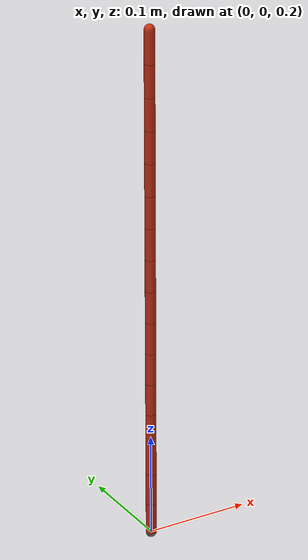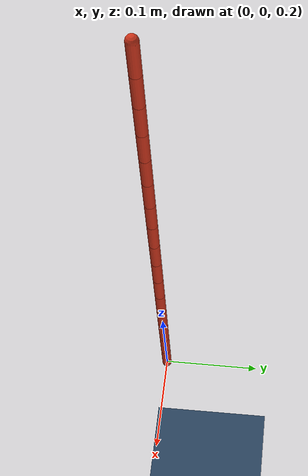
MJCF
<mujoco model="cable_trunk_model_example">
  <compiler angle="radian"/>

  <extension>
    <plugin plugin="mujoco.elasticity.cable"/>
  </extension>

  <custom>
    <text name="composite_actuated" data="rope_actuated"/>
  </custom>

  <asset>
    <texture type="2d" name="grid" builtin="checker" rgb1="0.1 0.2 0.3" rgb2="0.2 0.3 0.4" width="300" height="300"/>
    <material name="grid" texture="grid" texrepeat="8 8" reflectance="0.2"/>
  </asset>

  <worldbody>
    <camera name="yz_view" pos="0 -1.3 0.35" xyaxes="1 0 0 0 0 1"/>
    <geom size="10 10 0.01" type="plane" material="grid"/>
    <light pos="0 0 2" dir="0 0 -1"/>
    <body name="actuatedB_first" pos="0 0 0.7" quat="0 -0.707107 0 0.707107">
      <joint name="actuatedJ_0" pos="0 0 0" type="hinge" axis="0 1 0" group="3" stiffness="3" actuatorfrclimited="false" damping="0.15"/>
      <geom name="actuatedG0" size="0.005 0.015625" pos="0.015625 0 0" quat="0.707107 0 -0.707107 0" type="capsule" rgba="0.8 0.2 0.1 1"/>
      <site name="actuatedS_first" pos="0 0 0" group="3"/>
      <body name="actuatedB_1" pos="0.03125 0 0">
        <joint name="actuatedJ_1" pos="0 0 0" type="hinge" axis="0 1 0" group="3" stiffness="3" actuatorfrclimited="false" damping="0.15"/>
        <geom name="actuatedG1" size="0.005 0.015625" pos="0.015625 0 0" quat="0.707107 0 -0.707107 0" type="capsule" rgba="0.8 0.2 0.1 1"/>
        <body name="actuatedB_2" pos="0.03125 0 0">
          <joint name="actuatedJ_2" pos="0 0 0" type="hinge" axis="0 1 0" group="3" stiffness="3" actuatorfrclimited="false" damping="0.15"/>
          <geom name="actuatedG2" size="0.005 0.015625" pos="0.015625 0 0" quat="0.707107 0 -0.707107 0" type="capsule" rgba="0.8 0.2 0.1 1"/>
          <body name="actuatedB_3" pos="0.03125 0 0">
            <joint name="actuatedJ_3" pos="0 0 0" type="hinge" axis="0 1 0" group="3" stiffness="3" actuatorfrclimited="false" damping="0.15"/>
            <geom name="actuatedG3" size="0.005 0.015625" pos="0.015625 0 0" quat="0.707107 0 -0.707107 0" type="capsule" rgba="0.8 0.2 0.1 1"/>
            <body name="actuatedB_4" pos="0.03125 0 0">
              <joint name="actuatedJ_4" pos="0 0 0" type="hinge" axis="0 1 0" group="3" stiffness="3" actuatorfrclimited="false" damping="0.15"/>
              <geom name="actuatedG4" size="0.005 0.015625" pos="0.015625 0 0" quat="0.707107 0 -0.707107 0" type="capsule" rgba="0.8 0.2 0.1 1"/>
              <body name="actuatedB_5" pos="0.03125 0 0">
                <joint name="actuatedJ_5" pos="0 0 0" type="hinge" axis="0 1 0" group="3" stiffness="3" actuatorfrclimited="false" damping="0.15"/>
                <geom name="actuatedG5" size="0.005 0.015625" pos="0.015625 0 0" quat="0.707107 0 -0.707107 0" type="capsule" rgba="0.8 0.2 0.1 1"/>
                <body name="actuatedB_6" pos="0.03125 0 0">
                  <joint name="actuatedJ_6" pos="0 0 0" type="hinge" axis="0 1 0" group="3" stiffness="3" actuatorfrclimited="false" damping="0.15"/>
                  <geom name="actuatedG6" size="0.005 0.015625" pos="0.015625 0 0" quat="0.707107 0 -0.707107 0" type="capsule" rgba="0.8 0.2 0.1 1"/>
                  <body name="actuatedB_7" pos="0.03125 0 0">
                    <joint name="actuatedJ_7" pos="0 0 0" type="hinge" axis="0 1 0" group="3" stiffness="3" actuatorfrclimited="false" damping="0.15"/>
                    <geom name="actuatedG7" size="0.005 0.015625" pos="0.015625 0 0" quat="0.707107 0 -0.707107 0" type="capsule" rgba="0.8 0.2 0.1 1"/>
                    <body name="actuatedB_8" pos="0.03125 0 0">
                      <joint name="actuatedJ_8" pos="0 0 0" type="hinge" axis="0 1 0" group="3" stiffness="3" actuatorfrclimited="false" damping="0.15"/>
                      <geom name="actuatedG8" size="0.005 0.015625" pos="0.015625 0 0" quat="0.707107 0 -0.707107 0" type="capsule" rgba="0.8 0.2 0.1 1"/>
                      <body name="actuatedB_9" pos="0.03125 0 0">
                        <joint name="actuatedJ_9" pos="0 0 0" type="hinge" axis="0 1 0" group="3" stiffness="3" actuatorfrclimited="false" damping="0.15"/>
                        <geom name="actuatedG9" size="0.005 0.015625" pos="0.015625 0 0" quat="0.707107 0 -0.707107 0" type="capsule" rgba="0.8 0.2 0.1 1"/>
                        <body name="actuatedB_10" pos="0.03125 0 0">
                          <joint name="actuatedJ_10" pos="0 0 0" type="hinge" axis="0 1 0" group="3" stiffness="3" actuatorfrclimited="false" damping="0.15"/>
                          <geom name="actuatedG10" size="0.005 0.015625" pos="0.015625 0 0" quat="0.707107 0 -0.707107 0" type="capsule" rgba="0.8 0.2 0.1 1"/>
                          <body name="actuatedB_11" pos="0.03125 0 0">
                            <joint name="actuatedJ_11" pos="0 0 0" type="hinge" axis="0 1 0" group="3" stiffness="3" actuatorfrclimited="false" damping="0.15"/>
                            <geom name="actuatedG11" size="0.005 0.015625" pos="0.015625 0 0" quat="0.707107 0 -0.707107 0" type="capsule" rgba="0.8 0.2 0.1 1"/>
                            <body name="actuatedB_12" pos="0.03125 0 0">
                              <joint name="actuatedJ_12" pos="0 0 0" type="hinge" axis="0 1 0" group="3" stiffness="3" actuatorfrclimited="false" damping="0.15"/>
                              <geom name="actuatedG12" size="0.005 0.015625" pos="0.015625 0 0" quat="0.707107 0 -0.707107 0" type="capsule" rgba="0.8 0.2 0.1 1"/>
                              <body name="actuatedB_13" pos="0.03125 0 0">
                                <joint name="actuatedJ_13" pos="0 0 0" type="hinge" axis="0 1 0" group="3" stiffness="3" actuatorfrclimited="false" damping="0.15"/>
                                <geom name="actuatedG13" size="0.005 0.015625" pos="0.015625 0 0" quat="0.707107 0 -0.707107 0" type="capsule" rgba="0.8 0.2 0.1 1"/>
                                <body name="actuatedB_14" pos="0.03125 0 0">
                                  <joint name="actuatedJ_14" pos="0 0 0" type="hinge" axis="0 1 0" group="3" stiffness="3" actuatorfrclimited="false" damping="0.15"/>
                                  <geom name="actuatedG14" size="0.005 0.015625" pos="0.015625 0 0" quat="0.707107 0 -0.707107 0" type="capsule" rgba="0.8 0.2 0.1 1"/>
                                  <body name="actuatedB_last" pos="0.03125 0 0">
                                    <joint name="actuatedJ_15" pos="0 0 0" type="hinge" axis="0 1 0" group="3" stiffness="3" actuatorfrclimited="false" damping="0.15"/>
                                    <geom name="actuatedG15" size="0.005 0.015625" pos="0.015625 0 0" quat="0.707107 0 -0.707107 0" type="capsule" rgba="0.8 0.2 0.1 1"/>
                                    <site name="actuatedS_last" pos="0.03125 0 0" group="3"/>
                                    <site name="endeffector" pos="0.03125 0 0"/>
                                  </body>
                                </body>
                              </body>
                            </body>
                          </body>
                        </body>
                      </body>
                    </body>
                  </body>
                </body>
              </body>
            </body>
          </body>
        </body>
      </body>
    </body>
  </worldbody>

  <actuator>
    <motor name="actuator_0" joint="actuatedJ_0" gear="2"/>
    <motor name="actuator_1" joint="actuatedJ_1" gear="2"/>
    <motor name="actuator_2" joint="actuatedJ_2" gear="2"/>
    <motor name="actuator_3" joint="actuatedJ_3" gear="2"/>
    <motor name="actuator_4" joint="actuatedJ_4" gear="2"/>
    <motor name="actuator_5" joint="actuatedJ_5" gear="2"/>
    <motor name="actuator_6" joint="actuatedJ_6" gear="2"/>
    <motor name="actuator_7" joint="actuatedJ_7" gear="2"/>
    <motor name="actuator_8" joint="actuatedJ_8" gear="2"/>
    <motor name="actuator_9" joint="actuatedJ_9" gear="2"/>
    <motor name="actuator_10" joint="actuatedJ_10" gear="2"/>
    <motor name="actuator_11" joint="actuatedJ_11" gear="2"/>
    <motor name="actuator_12" joint="actuatedJ_12" gear="2"/>
    <motor name="actuator_13" joint="actuatedJ_13" gear="2"/>
    <motor name="actuator_14" joint="actuatedJ_14" gear="2"/>
    <motor name="actuator_15" joint="actuatedJ_15" gear="2"/>
  </actuator>

  <contact>
    <exclude body1="actuatedB_first" body2="actuatedB_1"/>
    <exclude body1="actuatedB_1" body2="actuatedB_2"/>
    <exclude body1="actuatedB_2" body2="actuatedB_3"/>
    <exclude body1="actuatedB_3" body2="actuatedB_4"/>
    <exclude body1="actuatedB_4" body2="actuatedB_5"/>
    <exclude body1="actuatedB_5" body2="actuatedB_6"/>
    <exclude body1="actuatedB_6" body2="actuatedB_7"/>
    <exclude body1="actuatedB_7" body2="actuatedB_8"/>
    <exclude body1="actuatedB_8" body2="actuatedB_9"/>
    <exclude body1="actuatedB_9" body2="actuatedB_10"/>
    <exclude body1="actuatedB_10" body2="actuatedB_11"/>
    <exclude body1="actuatedB_11" body2="actuatedB_12"/>
    <exclude body1="actuatedB_12" body2="actuatedB_13"/>
    <exclude body1="actuatedB_13" body2="actuatedB_14"/>
    <exclude body1="actuatedB_14" body2="actuatedB_last"/>
  </contact>

  <visual>
  <global offwidth="1920" offheight="1080"/>
  </visual>

</mujoco>
